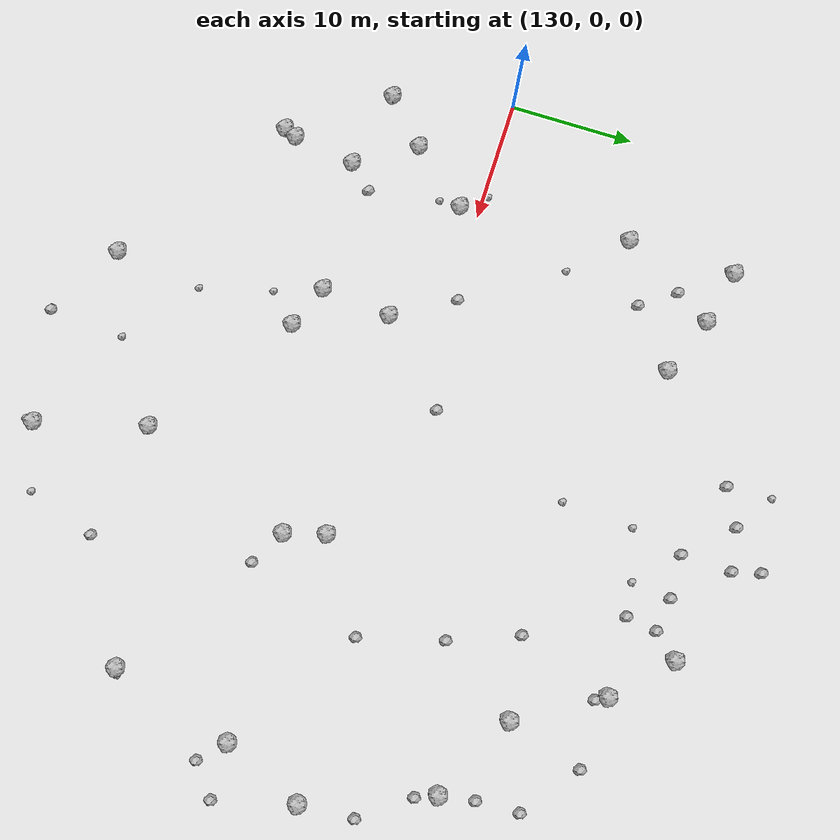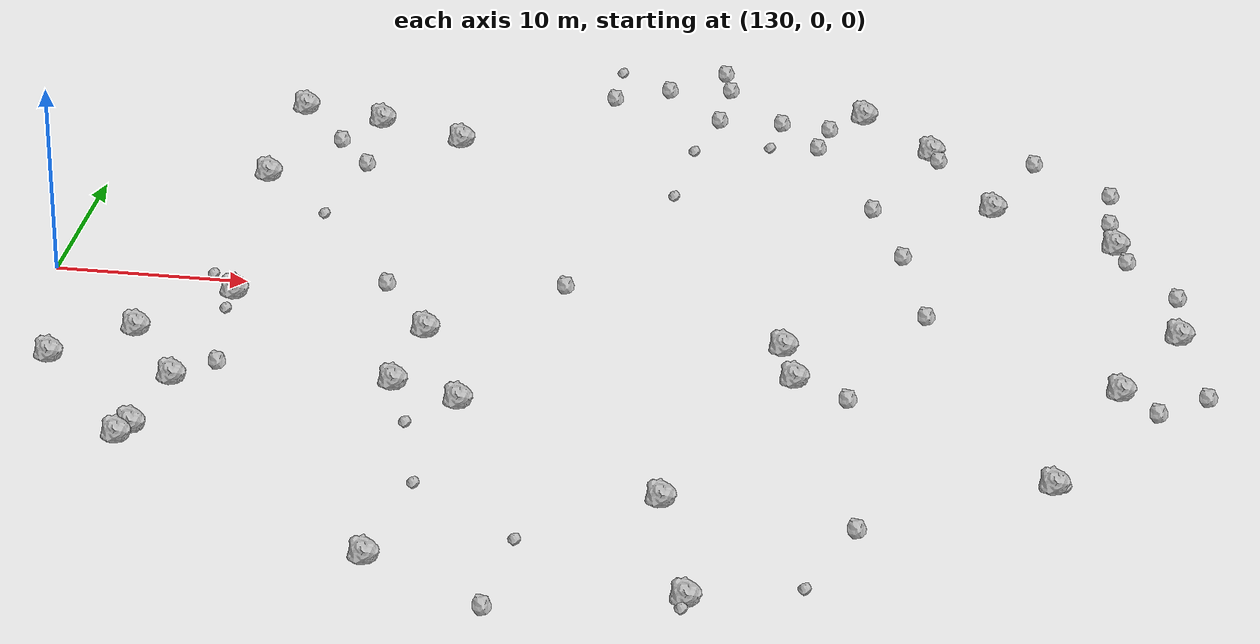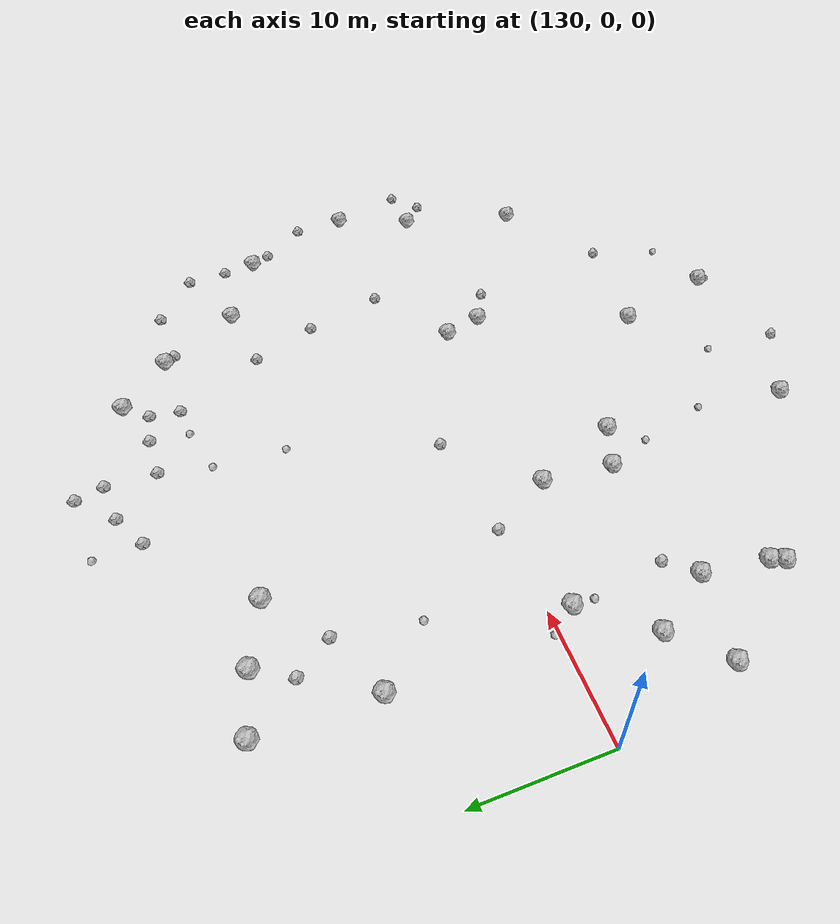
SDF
<sdf version="1.6">
 <world name="default">
  <include><uri>model://sun</uri></include>
  <model name="rock1_4_2">
   <include><uri>model://rock1</uri><pose>147.7642546348146 17.764863783308094 0.5 0 0 0</pose></include>
  </model>
  <model name="rock1_4_3">
   <include><uri>model://rock1</uri><pose>164.14487430753562 -19.198905124909015 0.5 0 0 0</pose></include>
  </model>
  <model name="rock1_4_4">
   <include><uri>model://rock1</uri><pose>138.06672492359905 -16.067479500030718 0.5 0 0 0</pose></include>
  </model>
  <model name="rock1_4_5">
   <include><uri>model://rock1</uri><pose>183.52851327078488 10.201221103023244 0.5 0 0 0</pose></include>
  </model>
  <model name="rock1_4_6">
   <include><uri>model://rock1</uri><pose>168.87272995238035 -6.68399206175544 0.5 0 0 0</pose></include>
  </model>
  <model name="rock1_4_7">
   <include><uri>model://rock1</uri><pose>153.07162020857868 -11.285300433342268 0.5 0 0 0</pose></include>
  </model>
  <model name="rock1_4_8">
   <include><uri>model://rock1</uri><pose>167.94656667832734 -3.492013580768397 0.5 0 0 0</pose></include>
  </model>
  <model name="rock1_4_9">
   <include><uri>model://rock1</uri><pose>169.04235780672073 24.088243743891233 0.5 0 0 0</pose></include>
  </model>
  <model name="rock1_4_10">
   <include><uri>model://rock1</uri><pose>138.37670497231528 12.06827983528298 0.5 0 0 0</pose></include>
  </model>
  <model name="rock1_4_11">
   <include><uri>model://rock1</uri><pose>184.66614044579975 -5.568828914969764 0.5 0 0 0</pose></include>
  </model>
  <model name="rock1_4_12">
   <include><uri>model://rock1</uri><pose>135.80540814413297 -6.292575723384225 0.5 0 0 0</pose></include>
  </model>
  <model name="rock1_4_13">
   <include><uri>model://rock1</uri><pose>176.92330066960517 13.624898630238263 0.5 0 0 0</pose></include>
  </model>
  <model name="rock1_4_14">
   <include><uri>model://rock1</uri><pose>166.53098868794876 -27.810705708185136 0.5 0 0 0</pose></include>
  </model>
  <model name="rock1_4_15">
   <include><uri>model://rock1</uri><pose>132.25612971288342 -9.660947038771418 0.5 0 0 0</pose></include>
  </model>
  <model name="rock1_4_16">
   <include><uri>model://rock1</uri><pose>150.09761448251353 -4.271974202882106 0.5 0 0 0</pose></include>
  </model>
  <model name="rock1_4_17">
   <include><uri>model://rock1</uri><pose>182.08526209079974 -15.226307247075678 0.5 0 0 0</pose></include>
  </model>
  <model name="rock1_4_18">
   <include><uri>model://rock1</uri><pose>149.58289012781296 -9.883200901956481 0.5 0 0 0</pose></include>
  </model>
  <model name="rock1_4_19">
   <include><uri>model://rock1</uri><pose>173.08698572725237 20.06664998518054 0.5 0 0 0</pose></include>
  </model>
  <model name="rock1_4_20">
   <include><uri>model://rock1</uri><pose>143.02373267832616 19.641408069921354 0.5 0 0 0</pose></include>
  </model>
  <model name="rock1_4_21">
   <include><uri>model://rock1</uri><pose>187.2173711385791 0.6722812599393393 0.5 0 0 0</pose></include>
  </model>
  <model name="rock1_4_22">
   <include><uri>model://rock1</uri><pose>138.5283941444375 20.709448618029654 0.5 0 0 0</pose></include>
  </model>
  <model name="rock1_4_23">
   <include><uri>model://rock1</uri><pose>139.73557535786827 -1.628347535035978 0.5 0 0 0</pose></include>
  </model>
  <model name="rock1_4_24">
   <include><uri>model://rock1</uri><pose>138.80058359440352 -11.002178178419033 0.5 0 0 0</pose></include>
  </model>
  <model name="rock1_4_25">
   <include><uri>model://rock1</uri><pose>151.5819622169701 -26.368243394779164 0.5 0 0 0</pose></include>
  </model>
  <model name="rock1_4_26">
   <include><uri>model://rock1</uri><pose>137.6209454498178 -17.101649959768707 0.5 0 0 0</pose></include>
  </model>
  <model name="rock2_4_0">
   <include><uri>model://rock2</uri><pose>174.57765456885852 1.0094927552309727 0.3 0 0 0</pose></include>
  </model>
  <model name="rock2_4_1">
   <include><uri>model://rock2</uri><pose>158.000668388966 25.997838488266943 0.3 0 0 0</pose></include>
  </model>
  <model name="rock2_4_2">
   <include><uri>model://rock2</uri><pose>155.16415282368632 24.496924382151207 0.3 0 0 0</pose></include>
  </model>
  <model name="rock2_4_3">
   <include><uri>model://rock2</uri><pose>184.18521937643953 8.621295677221731 0.3 0 0 0</pose></include>
  </model>
  <model name="rock2_4_4">
   <include><uri>model://rock2</uri><pose>186.91819998568408 4.950934289422463 0.3 0 0 0</pose></include>
  </model>
  <model name="rock2_4_5">
   <include><uri>model://rock2</uri><pose>161.3458536502938 26.477701451984416 0.3 0 0 0</pose></include>
  </model>
  <model name="rock2_4_6">
   <include><uri>model://rock2</uri><pose>156.18665916725922 1.6007351862181274 0.3 0 0 0</pose></include>
  </model>
  <model name="rock2_4_7">
   <include><uri>model://rock2</uri><pose>170.66931250748178 12.771128090502685 0.3 0 0 0</pose></include>
  </model>
  <model name="rock2_4_8">
   <include><uri>model://rock2</uri><pose>161.25029009604157 22.52587694363472 0.3 0 0 0</pose></include>
  </model>
  <model name="rock2_4_9">
   <include><uri>model://rock2</uri><pose>183.06723004108983 12.920858700877822 0.3 0 0 0</pose></include>
  </model>
  <model name="rock2_4_10">
   <include><uri>model://rock2</uri><pose>160.77960627666977 28.65062314840865 0.3 0 0 0</pose></include>
  </model>
  <model name="rock2_4_11">
   <include><uri>model://rock2</uri><pose>157.65873573067222 -29.756984471416487 0.3 0 0 0</pose></include>
  </model>
  <model name="rock2_4_12">
   <include><uri>model://rock2</uri><pose>182.9058113867792 16.233273877538863 0.3 0 0 0</pose></include>
  </model>
  <model name="rock2_4_13">
   <include><uri>model://rock2</uri><pose>173.5520783710217 19.21940763902242 0.3 0 0 0</pose></include>
  </model>
  <model name="rock2_4_14">
   <include><uri>model://rock2</uri><pose>172.76948856408876 7.480810866434872 0.3 0 0 0</pose></include>
  </model>
  <model name="rock2_4_15">
   <include><uri>model://rock2</uri><pose>178.65182740251765 19.55428981792486 0.3 0 0 0</pose></include>
  </model>
  <model name="rock2_4_16">
   <include><uri>model://rock2</uri><pose>143.2927148896406 14.20083351586593 0.3 0 0 0</pose></include>
  </model>
  <model name="rock2_4_17">
   <include><uri>model://rock2</uri><pose>167.32223010429675 22.235806533126066 0.3 0 0 0</pose></include>
  </model>
  <model name="rock2_4_18">
   <include><uri>model://rock2</uri><pose>147.17655954624638 0.5357874024268412 0.3 0 0 0</pose></include>
  </model>
  <model name="rock2_4_19">
   <include><uri>model://rock2</uri><pose>140.60825412932346 -9.003954379824282 0.3 0 0 0</pose></include>
  </model>
  <model name="rock2_4_20">
   <include><uri>model://rock2</uri><pose>186.5352293120353 -7.3338498435164325 0.3 0 0 0</pose></include>
  </model>
  <model name="rock2_4_21">
   <include><uri>model://rock2</uri><pose>173.39323354730504 -20.5026296796527 0.3 0 0 0</pose></include>
  </model>
  <model name="rock2_4_22">
   <include><uri>model://rock2</uri><pose>164.67294818643967 22.61333130350232 0.3 0 0 0</pose></include>
  </model>
  <model name="rock2_4_23">
   <include><uri>model://rock2</uri><pose>188.84415610069755 -5.41212946809215 0.3 0 0 0</pose></include>
  </model>
  <model name="rock2_4_24">
   <include><uri>model://rock2</uri><pose>141.33340338711997 16.932816689023845 0.3 0 0 0</pose></include>
  </model>
  <model name="rock2_4_25">
   <include><uri>model://rock2</uri><pose>166.9746765390204 19.833877831284305 0.3 0 0 0</pose></include>
  </model>
  <model name="rock2_4_26">
   <include><uri>model://rock2</uri><pose>171.64118298368436 -8.188982281044542 0.3 0 0 0</pose></include>
  </model>
  <model name="rock3_4_0">
   <include><uri>model://rock3</uri><pose>150.8881903773649 -13.596241037558755 0.2 0 0 0</pose></include>
  </model>
  <model name="rock3_4_1">
   <include><uri>model://rock3</uri><pose>166.40775887724752 -28.554129428270887 0.2 0 0 0</pose></include>
  </model>
  <model name="rock3_4_2">
   <include><uri>model://rock3</uri><pose>158.02672719543156 -23.723822206826057 0.2 0 0 0</pose></include>
  </model>
  <model name="rock3_4_3">
   <include><uri>model://rock3</uri><pose>155.0183910626241 28.024343212475827 0.2 0 0 0</pose></include>
  </model>
  <model name="rock3_4_4">
   <include><uri>model://rock3</uri><pose>182.56271173954414 -15.043938179081737 0.2 0 0 0</pose></include>
  </model>
  <model name="rock3_4_5">
   <include><uri>model://rock3</uri><pose>164.3701303663161 19.52554896695979 0.2 0 0 0</pose></include>
  </model>
  <model name="rock3_4_6">
   <include><uri>model://rock3</uri><pose>139.65485546244392 -3.3344846788341407 0.2 0 0 0</pose></include>
  </model>
  <model name="rock3_4_7">
   <include><uri>model://rock3</uri><pose>160.0986824029869 12.851465790864026 0.2 0 0 0</pose></include>
  </model>
  <model name="rock3_4_8">
   <include><uri>model://rock3</uri><pose>152.428831361118 -19.303016532124815 0.2 0 0 0</pose></include>
  </model>
  <model name="rock3_4_9">
   <include><uri>model://rock3</uri><pose>171.63987755422406 -26.064313545060603 0.2 0 0 0</pose></include>
  </model>
  <model name="rock3_4_10">
   <include><uri>model://rock3</uri><pose>160.38615386102197 18.49317194471736 0.2 0 0 0</pose></include>
  </model>
  <model name="rock3_4_11">
   <include><uri>model://rock3</uri><pose>142.26334670529695 8.003160347186025 0.2 0 0 0</pose></include>
  </model>
  <model name="rock3_4_12">
   <include><uri>model://rock3</uri><pose>138.17037869275458 0.30935516216014136 0.2 0 0 0</pose></include>
  </model>
 </world>
</sdf>
